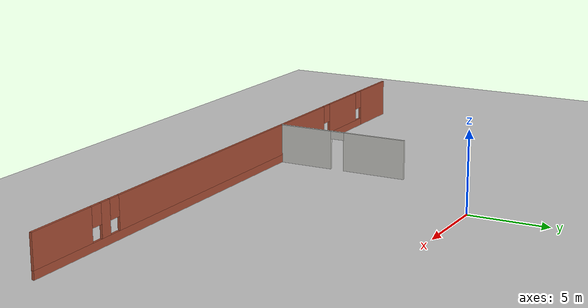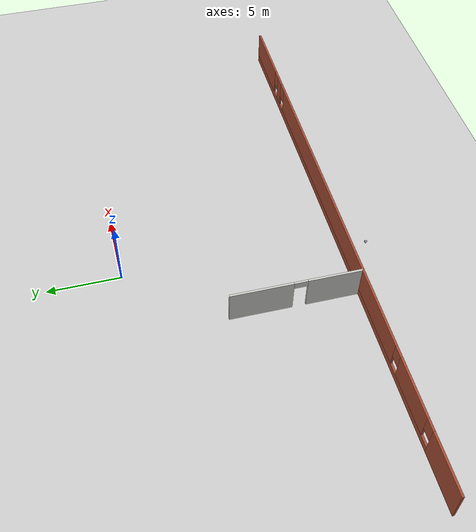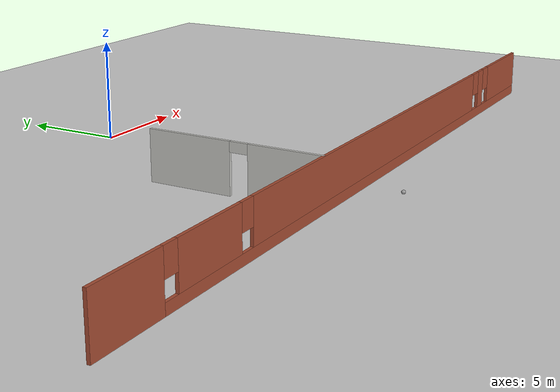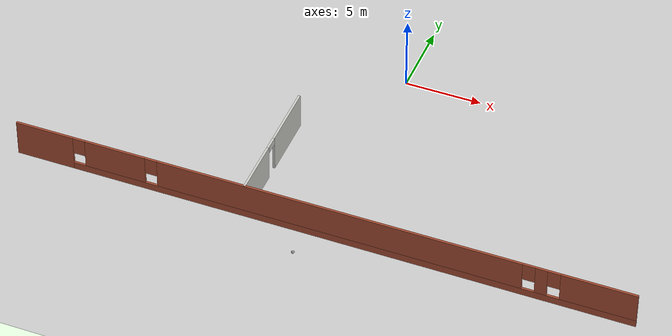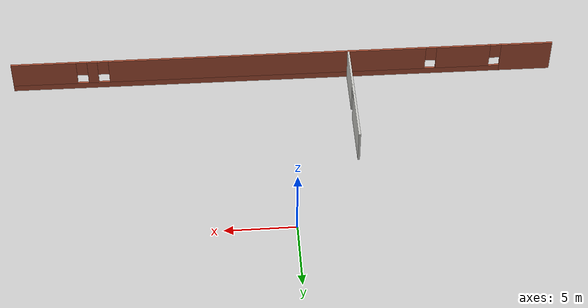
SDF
<sdf version="1.6">
 <world name="default">
  <model name="ground_plane">
   <static>1</static>
   <link name="link">
    <collision name="collision">
     <geometry><plane><normal>0 0 1</normal><size>100 100</size></plane></geometry>
     <surface>
      <contact><collide_bitmask>65535</collide_bitmask></contact>
      <friction><ode><mu>100</mu><mu2>50</mu2></ode></friction>
     </surface>
    </collision>
    <visual name="visual">
     <cast_shadows>0</cast_shadows>
     <geometry><plane><normal>0 0 1</normal><size>100 100</size></plane></geometry>
     <material>
      <script><uri>file://media/materials/scripts/gazebo.material</uri><name>Gazebo/Grey</name></script>
     </material>
    </visual>
   </link>
  </model>
  <model name="Office2">
   <pose>0.0583 0.03565 0 0 -0 0</pose>
   <link name="Wall_22">
    <pose>-4.86214 -10.5734 0 0 -0 -1.5708</pose>
    <visual name="Wall_22_Visual_0">
     <pose>-2.27908 0 1.25 0 -0 0</pose>
     <geometry><box><size>4.19185 0.15 2.5</size></box></geometry>
     <material>
      <script><uri>file://media/materials/scripts/gazebo.material</uri><name>Gazebo/CeilingTiled</name></script>
      <ambient>1 1 1 1</ambient>
     </material>
     <meta><layer>0</layer></meta>
    </visual>
    <collision name="Wall_22_Collision_0">
     <geometry><box><size>4.19185 0.15 2.5</size></box></geometry>
     <pose>-2.27908 0 1.25 0 -0 0</pose>
    </collision>
    <visual name="Wall_22_Visual_1">
     <pose>2.54592 0 1.25 0 -0 0</pose>
     <geometry><box><size>3.65815 0.15 2.5</size></box></geometry>
     <material>
      <script><uri>file://media/materials/scripts/gazebo.material</uri><name>Gazebo/CeilingTiled</name></script>
      <ambient>1 1 1 1</ambient>
     </material>
     <meta><layer>0</layer></meta>
    </visual>
    <collision name="Wall_22_Collision_1">
     <geometry><box><size>3.65815 0.15 2.5</size></box></geometry>
     <pose>2.54592 0 1.25 0 -0 0</pose>
    </collision>
    <visual name="Wall_22_Visual_2">
     <pose>0.266848 0 2.25 0 -0 0</pose>
     <geometry><box><size>0.9 0.15 0.5</size></box></geometry>
     <material>
      <script><uri>file://media/materials/scripts/gazebo.material</uri><name>Gazebo/CeilingTiled</name></script>
      <ambient>1 1 1 1</ambient>
     </material>
     <meta><layer>0</layer></meta>
    </visual>
    <collision name="Wall_22_Collision_2">
     <geometry><box><size>0.9 0.15 0.5</size></box></geometry>
     <pose>0.266848 0 2.25 0 -0 0</pose>
    </collision>
   </link>
   <link name="Wall_9">
    <pose>-0.053378 -14.925 0 0 -0 -8e-06</pose>
    <visual name="Wall_9_Visual_0">
     <pose>-18.0925 0 1.25 0 -0 0</pose>
     <geometry><box><size>3.81491 0.15 2.5</size></box></geometry>
     <material>
      <script><uri>file://media/materials/scripts/gazebo.material</uri><name>Gazebo/Bricks</name></script>
      <ambient>1 1 1 1</ambient>
     </material>
     <meta><layer>0</layer></meta>
    </visual>
    <collision name="Wall_9_Collision_0">
     <geometry><box><size>3.81491 0.15 2.5</size></box></geometry>
     <pose>-18.0925 0 1.25 0 -0 0</pose>
    </collision>
    <visual name="Wall_9_Visual_1">
     <pose>1.90746 0 0.25 0 -0 0</pose>
     <geometry><box><size>36.1851 0.15 0.5</size></box></geometry>
     <material>
      <script><uri>file://media/materials/scripts/gazebo.material</uri><name>Gazebo/Bricks</name></script>
      <ambient>1 1 1 1</ambient>
     </material>
     <meta><layer>0</layer></meta>
    </visual>
    <collision name="Wall_9_Collision_1">
     <geometry><box><size>36.1851 0.15 0.5</size></box></geometry>
     <pose>1.90746 0 0.25 0 -0 0</pose>
    </collision>
    <visual name="Wall_9_Visual_2">
     <pose>-13.3793 0 1.5 0 -0 0</pose>
     <geometry><box><size>4.01148 0.15 2</size></box></geometry>
     <material>
      <script><uri>file://media/materials/scripts/gazebo.material</uri><name>Gazebo/Bricks</name></script>
      <ambient>1 1 1 1</ambient>
     </material>
     <meta><layer>0</layer></meta>
    </visual>
    <collision name="Wall_9_Collision_2">
     <geometry><box><size>4.01148 0.15 2</size></box></geometry>
     <pose>-13.3793 0 1.5 0 -0 0</pose>
    </collision>
    <visual name="Wall_9_Visual_3">
     <pose>1.16123 0 1.5 0 -0 0</pose>
     <geometry><box><size>23.4697 0.15 2</size></box></geometry>
     <material>
      <script><uri>file://media/materials/scripts/gazebo.material</uri><name>Gazebo/Bricks</name></script>
      <ambient>1 1 1 1</ambient>
     </material>
     <meta><layer>0</layer></meta>
    </visual>
    <collision name="Wall_9_Collision_3">
     <geometry><box><size>23.4697 0.15 2</size></box></geometry>
     <pose>1.16123 0 1.5 0 -0 0</pose>
    </collision>
    <visual name="Wall_9_Visual_4">
     <pose>14.0744 0 1.5 0 -0 0</pose>
     <geometry><box><size>0.756656 0.15 2</size></box></geometry>
     <material>
      <script><uri>file://media/materials/scripts/gazebo.material</uri><name>Gazebo/Bricks</name></script>
      <ambient>1 1 1 1</ambient>
     </material>
     <meta><layer>0</layer></meta>
    </visual>
    <collision name="Wall_9_Collision_4">
     <geometry><box><size>0.756656 0.15 2</size></box></geometry>
     <pose>14.0744 0 1.5 0 -0 0</pose>
    </collision>
    <visual name="Wall_9_Visual_5">
     <pose>17.6264 0 1.5 0 -0 0</pose>
     <geometry><box><size>4.74728 0.15 2</size></box></geometry>
     <material>
      <script><uri>file://media/materials/scripts/gazebo.material</uri><name>Gazebo/Bricks</name></script>
      <ambient>1 1 1 1</ambient>
     </material>
     <meta><layer>0</layer></meta>
    </visual>
    <collision name="Wall_9_Collision_5">
     <geometry><box><size>4.74728 0.15 2</size></box></geometry>
     <pose>17.6264 0 1.5 0 -0 0</pose>
    </collision>
    <visual name="Wall_9_Visual_6">
     <pose>-15.7851 0 1.9 0 -0 0</pose>
     <geometry><box><size>0.8 0.15 1.2</size></box></geometry>
     <material>
      <script><uri>file://media/materials/scripts/gazebo.material</uri><name>Gazebo/Bricks</name></script>
      <ambient>1 1 1 1</ambient>
     </material>
     <meta><layer>0</layer></meta>
    </visual>
    <collision name="Wall_9_Collision_6">
     <geometry><box><size>0.8 0.15 1.2</size></box></geometry>
     <pose>-15.7851 0 1.9 0 -0 0</pose>
    </collision>
    <visual name="Wall_9_Visual_7">
     <pose>-10.9736 0 1.9 0 -0 0</pose>
     <geometry><box><size>0.8 0.15 1.2</size></box></geometry>
     <material>
      <script><uri>file://media/materials/scripts/gazebo.material</uri><name>Gazebo/Bricks</name></script>
      <ambient>1 1 1 1</ambient>
     </material>
     <meta><layer>0</layer></meta>
    </visual>
    <collision name="Wall_9_Collision_7">
     <geometry><box><size>0.8 0.15 1.2</size></box></geometry>
     <pose>-10.9736 0 1.9 0 -0 0</pose>
    </collision>
    <visual name="Wall_9_Visual_8">
     <pose>13.2961 0 1.9 0 -0 0</pose>
     <geometry><box><size>0.8 0.15 1.2</size></box></geometry>
     <material>
      <script><uri>file://media/materials/scripts/gazebo.material</uri><name>Gazebo/Bricks</name></script>
      <ambient>1 1 1 1</ambient>
     </material>
     <meta><layer>0</layer></meta>
    </visual>
    <collision name="Wall_9_Collision_8">
     <geometry><box><size>0.8 0.15 1.2</size></box></geometry>
     <pose>13.2961 0 1.9 0 -0 0</pose>
    </collision>
    <visual name="Wall_9_Visual_9">
     <pose>14.8527 0 1.9 0 -0 0</pose>
     <geometry><box><size>0.8 0.15 1.2</size></box></geometry>
     <material>
      <script><uri>file://media/materials/scripts/gazebo.material</uri><name>Gazebo/Bricks</name></script>
      <ambient>1 1 1 1</ambient>
     </material>
     <meta><layer>0</layer></meta>
    </visual>
    <collision name="Wall_9_Collision_9">
     <geometry><box><size>0.8 0.15 1.2</size></box></geometry>
     <pose>14.8527 0 1.9 0 -0 0</pose>
    </collision>
   </link>
   <static>1</static>
  </model>
  <model name="my_ball">
   <link name="link_0">
    <inertial>
     <mass>1</mass>
     <inertia><ixx>0.1</ixx><ixy>0</ixy><ixz>0</ixz><iyy>0.1</iyy><iyz>0</iyz><izz>0.1</izz></inertia>
    </inertial>
    <visual name="visual">
     <geometry><sphere><radius>0.1</radius></sphere></geometry>
     <material>
      <lighting>1</lighting>
      <script><uri>file://media/materials/scripts/gazebo.material</uri><name>Gazebo/Grey</name></script>
      <shader type="vertex"><normal_map>__default__</normal_map></shader>
      <ambient>1 1 1 1</ambient>
      <diffuse>1 1 1 1</diffuse>
      <specular>1 1 1 1</specular>
      <emissive>1 1 1 1</emissive>
     </material>
    </visual>
    <collision name="collision">
     <geometry><sphere><radius>0.1</radius></sphere></geometry>
     <surface>
      <friction>
       <ode><mu>1</mu><mu2>1</mu2><fdir1>0 0 0</fdir1><slip1>0</slip1><slip2>0</slip2></ode>
       <torsional>
        <coefficient>1</coefficient>
        <patch_radius>0</patch_radius>
        <surface_radius>0</surface_radius>
        <use_patch_radius>1</use_patch_radius>
        <ode><slip>0</slip></ode>
       </torsional>
      </friction>
      <bounce><restitution_coefficient>0</restitution_coefficient><threshold>1e+06</threshold></bounce>
      <contact>
       <collide_without_contact>0</collide_without_contact>
       <collide_without_contact_bitmask>1</collide_without_contact_bitmask>
       <collide_bitmask>1</collide_bitmask>
       <ode>
        <soft_cfm>0</soft_cfm>
        <soft_erp>0.2</soft_erp>
        <kp>1e+13</kp>
        <kd>1</kd>
        <max_vel>0.01</max_vel>
        <min_depth>0</min_depth>
       </ode>
       <bullet>
        <split_impulse>1</split_impulse>
        <split_impulse_penetration_threshold>-0.01</split_impulse_penetration_threshold>
        <soft_cfm>0</soft_cfm>
        <soft_erp>0.2</soft_erp>
        <kp>1e+13</kp>
        <kd>1</kd>
       </bullet>
      </contact>
     </surface>
    </collision>
   </link>
   <static>0</static>
   <pose>-0.893461 -16.8027 0.1 0 -0 0</pose>
  </model>
 </world>
</sdf>
